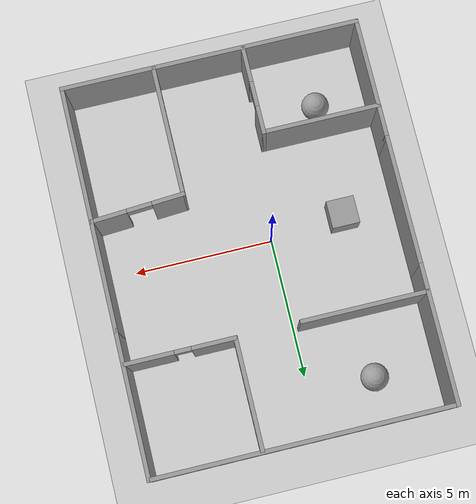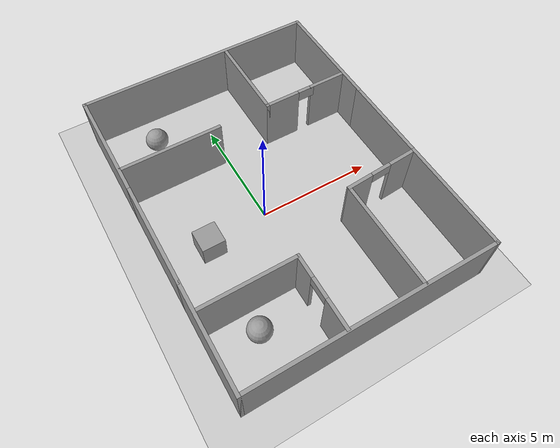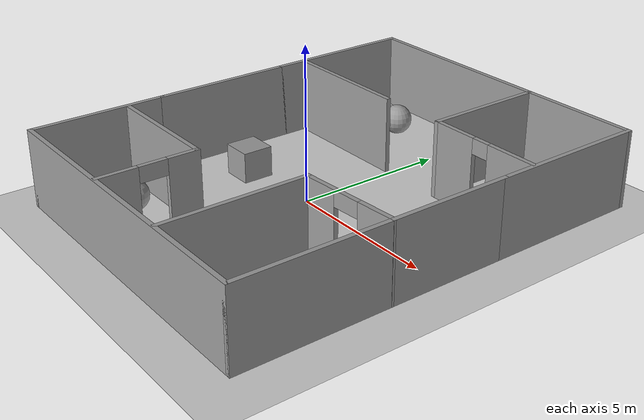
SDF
<sdf version="1.7">
 <world name="default">
  <light name="sun" type="directional">
   <pose>0 0 10 0 -0 0</pose>
   <diffuse>0.8 0.8 0.8 1</diffuse>
   <specular>0.2 0.2 0.2 1</specular>
   <attenuation>
    <range>1000</range>
    <constant>0.9</constant>
    <linear>0.01</linear>
    <quadratic>0.001</quadratic>
   </attenuation>
   <direction>-0.5 0.1 -0.9</direction>
   <spot><inner_angle>0</inner_angle><outer_angle>0</outer_angle><falloff>0</falloff></spot>
  </light>
  <model name="ground_plane">
   <static>1</static>
   <link name="link">
    <collision name="collision">
     <geometry><plane><normal>0 0 1</normal><size>100 100</size></plane></geometry>
     <surface>
      <contact><collide_bitmask>65535</collide_bitmask></contact>
      <friction><ode><mu>100</mu><mu2>50</mu2></ode></friction>
     </surface>
    </collision>
    <visual name="visual">
     <cast_shadows>0</cast_shadows>
     <geometry><plane><normal>0 0 1</normal><size>100 100</size></plane></geometry>
     <material>
      <script><uri>file://media/materials/scripts/gazebo.material</uri><name>Gazebo/Grey</name></script>
     </material>
    </visual>
   </link>
  </model>
  <gravity>0 0 -9.8</gravity>
  <magnetic_field>6e-06 2.3e-05 -4.2e-05</magnetic_field>
  <atmosphere type="adiabatic"/>
  <physics type="ode">
   <max_step_size>0.001</max_step_size>
   <real_time_factor>1</real_time_factor>
   <real_time_update_rate>1000</real_time_update_rate>
  </physics>
  <scene><ambient>0.4 0.4 0.4 1</ambient><background>0.7 0.7 0.7 1</background><shadows>1</shadows></scene>
  <spherical_coordinates>
   <surface_model>EARTH_WGS84</surface_model>
   <latitude_deg>0</latitude_deg>
   <longitude_deg>0</longitude_deg>
   <elevation>0</elevation>
   <heading_deg>0</heading_deg>
  </spherical_coordinates>
  <model name="Map1">
   <pose>0.662326 0.35 0 0 -0 0</pose>
   <link name="Wall_36">
    <collision name="Wall_36_Collision">
     <geometry><box><size>4.5 0.15 2.5</size></box></geometry>
     <pose>0 0 1.25 0 -0 0</pose>
    </collision>
    <visual name="Wall_36_Visual">
     <pose>0 0 1.25 0 -0 0</pose>
     <geometry><box><size>4.5 0.15 2.5</size></box></geometry>
     <material>
      <script><uri>file://media/materials/scripts/gazebo.material</uri><name>Gazebo/Grey</name></script>
      <ambient>1 1 1 1</ambient>
     </material>
     <meta><layer>0</layer></meta>
    </visual>
    <pose>-5.30233 -4.725 0 0 -0 -1.5708</pose>
   </link>
   <link name="Wall_37">
    <collision name="Wall_37_Collision">
     <geometry><box><size>10.75 0.15 2.5</size></box></geometry>
     <pose>0 0 1.25 0 -0 0</pose>
    </collision>
    <visual name="Wall_37_Visual">
     <pose>0 0 1.25 0 -0 0</pose>
     <geometry><box><size>10.75 0.15 2.5</size></box></geometry>
     <material>
      <script><uri>file://media/materials/scripts/gazebo.material</uri><name>Gazebo/Grey</name></script>
      <ambient>1 1 1 1</ambient>
     </material>
     <meta><layer>0</layer></meta>
    </visual>
    <pose>-0.002326 -6.9 0 0 -0 0</pose>
   </link>
   <link name="Wall_38">
    <collision name="Wall_38_Collision">
     <geometry><box><size>5 0.15 2.5</size></box></geometry>
     <pose>0 0 1.25 0 -0 0</pose>
    </collision>
    <visual name="Wall_38_Visual">
     <pose>0 0 1.25 0 -0 0</pose>
     <geometry><box><size>5 0.15 2.5</size></box></geometry>
     <material>
      <script><uri>file://media/materials/scripts/gazebo.material</uri><name>Gazebo/Grey</name></script>
      <ambient>1 1 1 1</ambient>
     </material>
     <meta><layer>0</layer></meta>
    </visual>
    <pose>5.29767 -4.475 0 0 -0 1.5708</pose>
   </link>
   <link name="Wall_40">
    <collision name="Wall_40_Collision">
     <geometry><box><size>4.75 0.15 2.5</size></box></geometry>
     <pose>0 0 1.25 0 -0 0</pose>
    </collision>
    <visual name="Wall_40_Visual">
     <pose>0 0 1.25 0 -0 0</pose>
     <geometry><box><size>4.75 0.15 2.5</size></box></geometry>
     <material>
      <script><uri>file://media/materials/scripts/gazebo.material</uri><name>Gazebo/Grey</name></script>
      <ambient>1 1 1 1</ambient>
     </material>
     <meta><layer>0</layer></meta>
    </visual>
    <pose>-5.30233 -0.25 0 0 -0 1.5708</pose>
   </link>
   <link name="Wall_42">
    <collision name="Wall_42_Collision">
     <geometry><box><size>4 0.15 2.5</size></box></geometry>
     <pose>0 0 1.25 0 -0 0</pose>
    </collision>
    <visual name="Wall_42_Visual">
     <pose>0 0 1.25 0 -0 0</pose>
     <geometry><box><size>4 0.15 2.5</size></box></geometry>
     <material>
      <script><uri>file://media/materials/scripts/gazebo.material</uri><name>Gazebo/Grey</name></script>
      <ambient>1 1 1 1</ambient>
     </material>
     <meta><layer>0</layer></meta>
    </visual>
    <pose>5.29767 -0.125 0 0 -0 1.5708</pose>
   </link>
   <link name="Wall_44">
    <collision name="Wall_44_Collision">
     <geometry><box><size>5.25 0.15 2.5</size></box></geometry>
     <pose>0 0 1.25 0 -0 0</pose>
    </collision>
    <visual name="Wall_44_Visual">
     <pose>0 0 1.25 0 -0 0</pose>
     <geometry><box><size>5.25 0.15 2.5</size></box></geometry>
     <material>
      <script><uri>file://media/materials/scripts/gazebo.material</uri><name>Gazebo/Grey</name></script>
      <ambient>1 1 1 1</ambient>
     </material>
     <meta><layer>0</layer></meta>
    </visual>
    <pose>5.29767 4.35 0 0 -0 1.5708</pose>
   </link>
   <link name="Wall_45">
    <collision name="Wall_45_Collision">
     <geometry><box><size>10.75 0.15 2.5</size></box></geometry>
     <pose>0 0 1.25 0 -0 0</pose>
    </collision>
    <visual name="Wall_45_Visual">
     <pose>0 0 1.25 0 -0 0</pose>
     <geometry><box><size>10.75 0.15 2.5</size></box></geometry>
     <material>
      <script><uri>file://media/materials/scripts/gazebo.material</uri><name>Gazebo/Grey</name></script>
      <ambient>1 1 1 1</ambient>
     </material>
     <meta><layer>0</layer></meta>
    </visual>
    <pose>-0.002326 6.9 0 0 -0 3.14159</pose>
   </link>
   <link name="Wall_46">
    <collision name="Wall_46_Collision">
     <geometry><box><size>5 0.15 2.5</size></box></geometry>
     <pose>0 0 1.25 0 -0 0</pose>
    </collision>
    <visual name="Wall_46_Visual">
     <pose>0 0 1.25 0 -0 0</pose>
     <geometry><box><size>5 0.15 2.5</size></box></geometry>
     <material>
      <script><uri>file://media/materials/scripts/gazebo.material</uri><name>Gazebo/Grey</name></script>
      <ambient>1 1 1 1</ambient>
     </material>
     <meta><layer>0</layer></meta>
    </visual>
    <pose>-5.30233 4.475 0 0 -0 -1.5708</pose>
   </link>
   <link name="Wall_48">
    <collision name="Wall_48_Collision">
     <geometry><box><size>4 0.15 2.5</size></box></geometry>
     <pose>0 0 1.25 0 -0 0</pose>
    </collision>
    <visual name="Wall_48_Visual">
     <pose>0 0 1.25 0 -0 0</pose>
     <geometry><box><size>4 0.15 2.5</size></box></geometry>
     <material>
      <script><uri>file://media/materials/scripts/gazebo.material</uri><name>Gazebo/Grey</name></script>
      <ambient>1 1 1 1</ambient>
     </material>
     <meta><layer>0</layer></meta>
    </visual>
    <pose>1.41767 4.905 0 0 -0 -1.5708</pose>
   </link>
   <link name="Wall_49">
    <pose>2.51767 2.98 0 0 -0 0</pose>
    <visual name="Wall_49_Visual_0">
     <pose>-0.3725 0 1.25 0 -0 0</pose>
     <geometry><box><size>1.605 0.15 2.5</size></box></geometry>
     <material>
      <script><uri>file://media/materials/scripts/gazebo.material</uri><name>Gazebo/Grey</name></script>
      <ambient>1 1 1 1</ambient>
     </material>
     <meta><layer>0</layer></meta>
    </visual>
    <collision name="Wall_49_Collision_0">
     <geometry><box><size>1.605 0.15 2.5</size></box></geometry>
     <pose>-0.3725 0 1.25 0 -0 0</pose>
    </collision>
    <visual name="Wall_49_Visual_1">
     <pose>0.8025 0 2.25 0 -0 0</pose>
     <geometry><box><size>0.745 0.15 0.5</size></box></geometry>
     <material>
      <script><uri>file://media/materials/scripts/gazebo.material</uri><name>Gazebo/Grey</name></script>
      <ambient>1 1 1 1</ambient>
     </material>
     <meta><layer>0</layer></meta>
    </visual>
    <collision name="Wall_49_Collision_1">
     <geometry><box><size>0.745 0.15 0.5</size></box></geometry>
     <pose>0.8025 0 2.25 0 -0 0</pose>
    </collision>
   </link>
   <link name="Wall_51">
    <collision name="Wall_51_Collision">
     <geometry><box><size>1.75 0.15 2.5</size></box></geometry>
     <pose>0 0 1.25 0 -0 0</pose>
    </collision>
    <visual name="Wall_51_Visual">
     <pose>0 0 1.25 0 -0 0</pose>
     <geometry><box><size>1.75 0.15 2.5</size></box></geometry>
     <material>
      <script><uri>file://media/materials/scripts/gazebo.material</uri><name>Gazebo/Grey</name></script>
      <ambient>1 1 1 1</ambient>
     </material>
     <meta><layer>0</layer></meta>
    </visual>
    <pose>4.41767 2.98 0 0 -0 0</pose>
   </link>
   <link name="Wall_55">
    <collision name="Wall_55_Collision">
     <geometry><box><size>4.5 0.15 2.5</size></box></geometry>
     <pose>0 0 1.25 0 -0 0</pose>
    </collision>
    <visual name="Wall_55_Visual">
     <pose>0 0 1.25 0 -0 0</pose>
     <geometry><box><size>4.5 0.15 2.5</size></box></geometry>
     <material>
      <script><uri>file://media/materials/scripts/gazebo.material</uri><name>Gazebo/Grey</name></script>
      <ambient>1 1 1 1</ambient>
     </material>
     <meta><layer>0</layer></meta>
    </visual>
    <pose>-3.07733 2.97 0 0 -0 0</pose>
   </link>
   <link name="Wall_57">
    <collision name="Wall_57_Collision">
     <geometry><box><size>4.25 0.15 2.5</size></box></geometry>
     <pose>0 0 1.25 0 -0 0</pose>
    </collision>
    <visual name="Wall_57_Visual">
     <pose>0 0 1.25 0 -0 0</pose>
     <geometry><box><size>4.25 0.15 2.5</size></box></geometry>
     <material>
      <script><uri>file://media/materials/scripts/gazebo.material</uri><name>Gazebo/Grey</name></script>
      <ambient>1 1 1 1</ambient>
     </material>
     <meta><layer>0</layer></meta>
    </visual>
    <pose>-3.24233 -3.75 0 0 -0 0</pose>
   </link>
   <link name="Wall_59">
    <pose>-1.19233 -5.3 0 0 -0 -1.5708</pose>
    <visual name="Wall_59_Visual_0">
     <pose>-1.1075 0 1.25 0 -0 0</pose>
     <geometry><box><size>1.035 0.15 2.5</size></box></geometry>
     <material>
      <script><uri>file://media/materials/scripts/gazebo.material</uri><name>Gazebo/Grey</name></script>
      <ambient>1 1 1 1</ambient>
     </material>
     <meta><layer>0</layer></meta>
    </visual>
    <collision name="Wall_59_Collision_0">
     <geometry><box><size>1.035 0.15 2.5</size></box></geometry>
     <pose>-1.1075 0 1.25 0 -0 0</pose>
    </collision>
    <visual name="Wall_59_Visual_1">
     <pose>0.9675 0 1.25 0 -0 0</pose>
     <geometry><box><size>1.315 0.15 2.5</size></box></geometry>
     <material>
      <script><uri>file://media/materials/scripts/gazebo.material</uri><name>Gazebo/Grey</name></script>
      <ambient>1 1 1 1</ambient>
     </material>
     <meta><layer>0</layer></meta>
    </visual>
    <collision name="Wall_59_Collision_1">
     <geometry><box><size>1.315 0.15 2.5</size></box></geometry>
     <pose>0.9675 0 1.25 0 -0 0</pose>
    </collision>
    <visual name="Wall_59_Visual_2">
     <pose>-0.14 0 2.25 0 -0 0</pose>
     <geometry><box><size>0.9 0.15 0.5</size></box></geometry>
     <material>
      <script><uri>file://media/materials/scripts/gazebo.material</uri><name>Gazebo/Grey</name></script>
      <ambient>1 1 1 1</ambient>
     </material>
     <meta><layer>0</layer></meta>
    </visual>
    <collision name="Wall_59_Collision_2">
     <geometry><box><size>0.9 0.15 0.5</size></box></geometry>
     <pose>-0.14 0 2.25 0 -0 0</pose>
    </collision>
   </link>
   <link name="Wall_61">
    <collision name="Wall_61_Collision">
     <geometry><box><size>4.75 0.15 2.5</size></box></geometry>
     <pose>0 0 1.25 0 -0 0</pose>
    </collision>
    <visual name="Wall_61_Visual">
     <pose>0 0 1.25 0 -0 0</pose>
     <geometry><box><size>4.75 0.15 2.5</size></box></geometry>
     <material>
      <script><uri>file://media/materials/scripts/gazebo.material</uri><name>Gazebo/Grey</name></script>
      <ambient>1 1 1 1</ambient>
     </material>
     <meta><layer>0</layer></meta>
    </visual>
    <pose>2.02767 -4.56 0 0 -0 1.5708</pose>
   </link>
   <link name="Wall_66">
    <pose>3.66267 -2.155 0 0 -0 0.064132</pose>
    <visual name="Wall_66_Visual_0">
     <pose>-1.11702 0 1.25 0 -0 0</pose>
     <geometry><box><size>1.19269 0.15 2.5</size></box></geometry>
     <material>
      <script><uri>file://media/materials/scripts/gazebo.material</uri><name>Gazebo/Grey</name></script>
      <ambient>1 1 1 1</ambient>
     </material>
     <meta><layer>0</layer></meta>
    </visual>
    <collision name="Wall_66_Collision_0">
     <geometry><box><size>1.19269 0.15 2.5</size></box></geometry>
     <pose>-1.11702 0 1.25 0 -0 0</pose>
    </collision>
    <visual name="Wall_66_Visual_1">
     <pose>1.04634 0 1.25 0 -0 0</pose>
     <geometry><box><size>1.33405 0.15 2.5</size></box></geometry>
     <material>
      <script><uri>file://media/materials/scripts/gazebo.material</uri><name>Gazebo/Grey</name></script>
      <ambient>1 1 1 1</ambient>
     </material>
     <meta><layer>0</layer></meta>
    </visual>
    <collision name="Wall_66_Collision_1">
     <geometry><box><size>1.33405 0.15 2.5</size></box></geometry>
     <pose>1.04634 0 1.25 0 -0 0</pose>
    </collision>
    <visual name="Wall_66_Visual_2">
     <pose>-0.07068 0 2.25 0 -0 0</pose>
     <geometry><box><size>0.9 0.15 0.5</size></box></geometry>
     <material>
      <script><uri>file://media/materials/scripts/gazebo.material</uri><name>Gazebo/Grey</name></script>
      <ambient>1 1 1 1</ambient>
     </material>
     <meta><layer>0</layer></meta>
    </visual>
    <collision name="Wall_66_Collision_2">
     <geometry><box><size>0.9 0.15 0.5</size></box></geometry>
     <pose>-0.07068 0 2.25 0 -0 0</pose>
    </collision>
   </link>
   <static>1</static>
  </model>
  <model name="unit_sphere">
   <pose>-2.36586 5.61964 0.5 0 -0 0</pose>
   <link name="link">
    <inertial>
     <mass>1</mass>
     <inertia><ixx>0.1</ixx><ixy>0</ixy><ixz>0</ixz><iyy>0.1</iyy><iyz>0</iyz><izz>0.1</izz></inertia>
    </inertial>
    <collision name="collision"><geometry><sphere><radius>0.5</radius></sphere></geometry></collision>
    <visual name="visual">
     <geometry><sphere><radius>0.5</radius></sphere></geometry>
     <material>
      <script><name>Gazebo/Grey</name><uri>file://media/materials/scripts/gazebo.material</uri></script>
     </material>
    </visual>
   </link>
  </model>
  <model name="unit_sphere_0">
   <pose>-2.71085 -4.41224 0.5 0 -0 0</pose>
   <link name="link">
    <inertial>
     <mass>1</mass>
     <inertia><ixx>0.1</ixx><ixy>0</ixy><ixz>0</ixz><iyy>0.1</iyy><iyz>0</iyz><izz>0.1</izz></inertia>
    </inertial>
    <collision name="collision"><geometry><sphere><radius>0.5</radius></sphere></geometry></collision>
    <visual name="visual">
     <geometry><sphere><radius>0.5</radius></sphere></geometry>
     <material>
      <script><name>Gazebo/Grey</name><uri>file://media/materials/scripts/gazebo.material</uri></script>
     </material>
    </visual>
   </link>
  </model>
  <model name="unit_box">
   <pose>-2.67921 -0.28438 0.5 0 -0 0</pose>
   <link name="link">
    <inertial>
     <mass>1</mass>
     <inertia>
      <ixx>0.166667</ixx>
      <ixy>0</ixy>
      <ixz>0</ixz>
      <iyy>0.166667</iyy>
      <iyz>0</iyz>
      <izz>0.166667</izz>
     </inertia>
    </inertial>
    <collision name="collision"><geometry><box><size>1 1 1</size></box></geometry></collision>
    <visual name="visual">
     <geometry><box><size>1 1 1</size></box></geometry>
     <material>
      <script><name>Gazebo/Grey</name><uri>file://media/materials/scripts/gazebo.material</uri></script>
     </material>
    </visual>
   </link>
  </model>
 </world>
</sdf>
